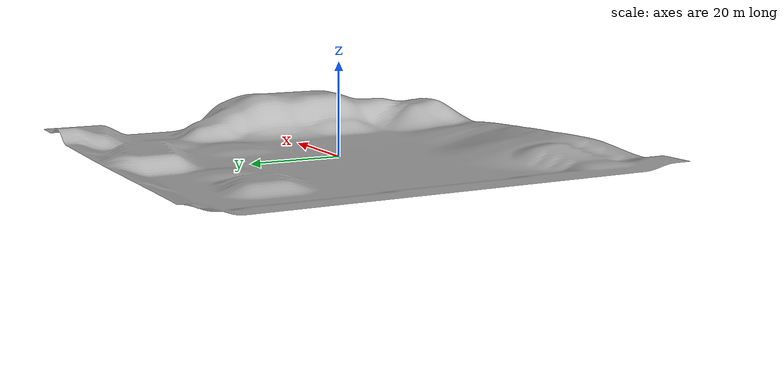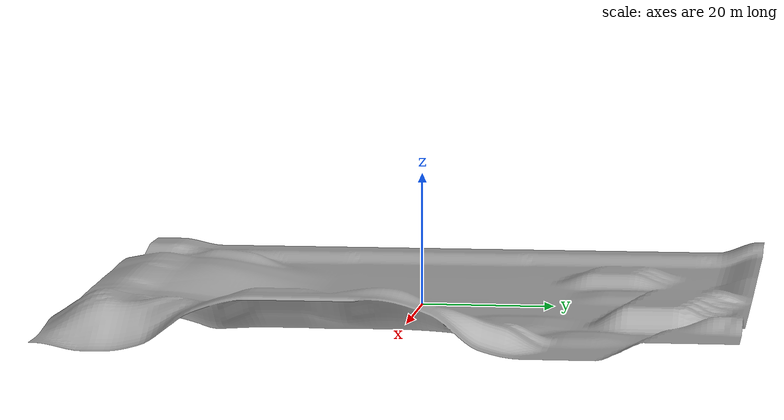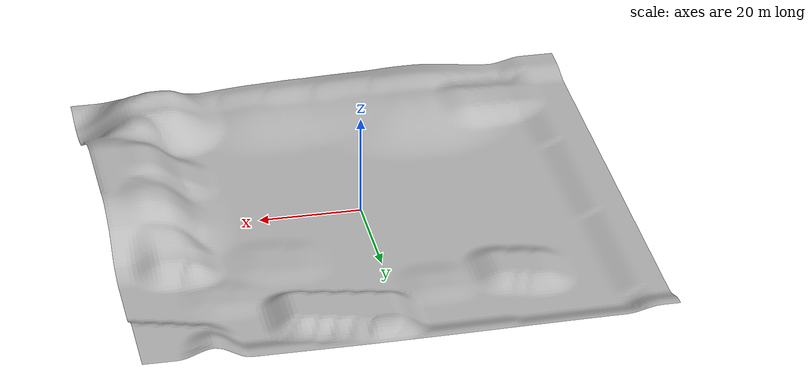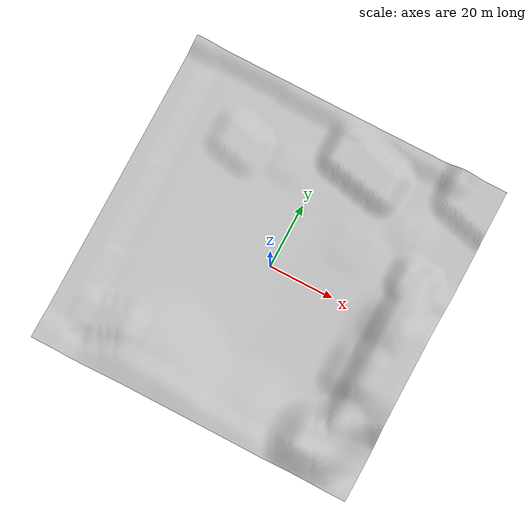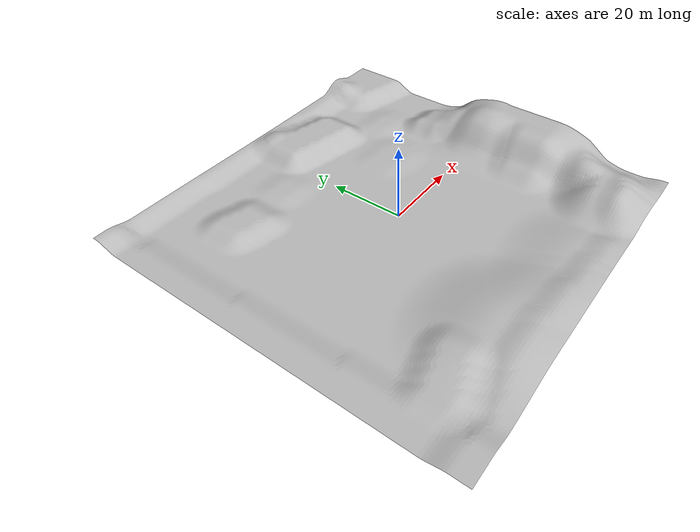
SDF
<?xml version="1.0" ?>
<sdf version="1.6">
  <model name="outdoor_terrain">
    <static>true</static>
    <link name="link">
      <collision name="collision">
        <geometry>
          <mesh>
            <uri>model://outdoor_terrain/meshes/terrain.dae</uri>
          </mesh>
        </geometry>
      </collision>
      <visual name="visual">
        <geometry>
          <mesh>
            <uri>model://outdoor_terrain/meshes/terrain.dae</uri>
          </mesh>
        </geometry>
      </visual>
    </link>
  </model>
</sdf>
